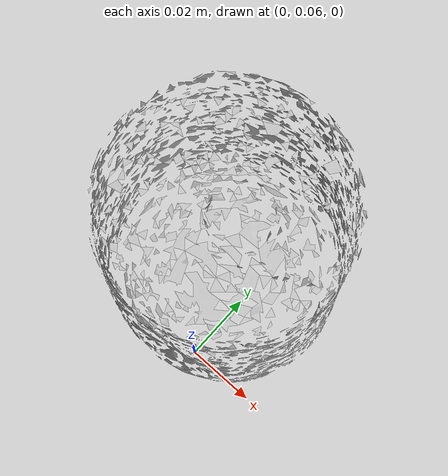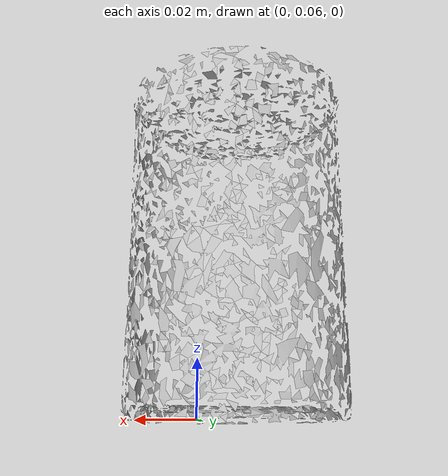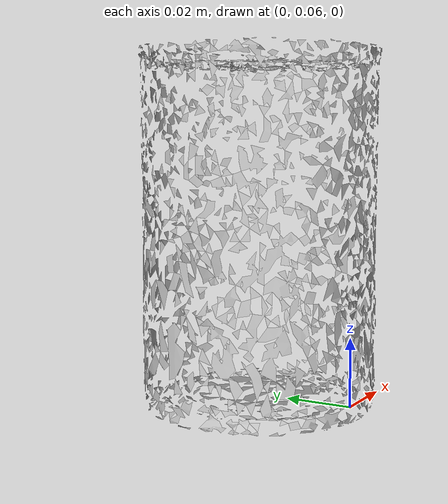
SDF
<?xml version='1.0'?>
<sdf version="1.4">
  <model name="tomato_soup_can">
    <static>false</static>
    <link name="link">
      <inertial>
        <pose>-0.009342099371394881 0.08422424437662782 0.05002583293554274 3.1365990876951546 0.00247077853043403 -1.5170937431765652</pose>
        <mass>0.00031936054545834833</mass>
        <inertia>
          <ixx>3.227283942943359e-07</ixx>
          <ixy>-2.4896883315980456e-24</ixy>
          <ixz>-1.0104684087327481e-22</ixz>
          <iyy>3.202048833647145e-07</iyy>
          <iyz>1.148110875858897e-23</iyz>
          <izz>1.7554012836758343e-07</izz>
        </inertia>
      </inertial>
      <collision name="collision">
        <geometry>
          <mesh>
            <!-- Use a downsampled mesh for collisions -->
            <uri>model://005_tomato_soup_can/downsampled.obj</uri>
	        </mesh>
        </geometry>
        <surface>
      </surface>
      </collision>
      <visual name="visual">
        <geometry>
          <mesh>
            <uri>model://005_tomato_soup_can/google_16k/textured.obj</uri>
	        </mesh>
        </geometry>
        <material>
          <script>
            <uri>model://005_tomato_soup_can/tomato_soup_can.material</uri>
            <name>tomato_soup_can</name>
          </script>
        </material>
      </visual>
    </link>
  </model>
</sdf>
